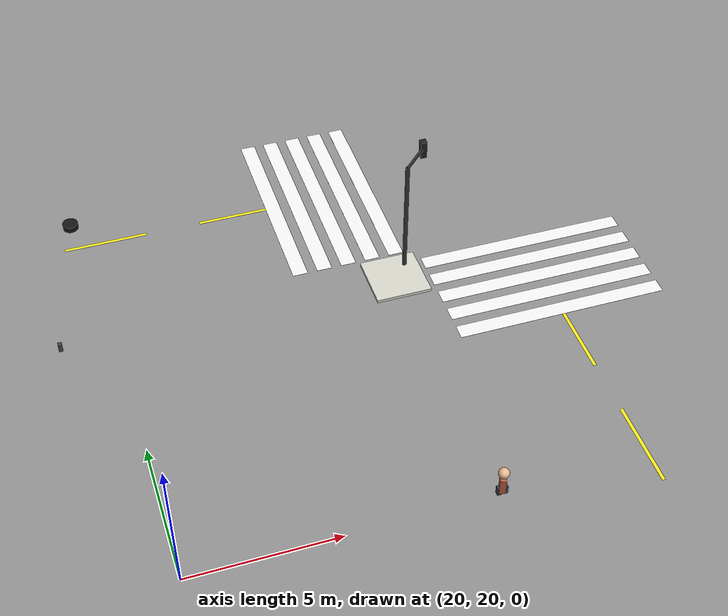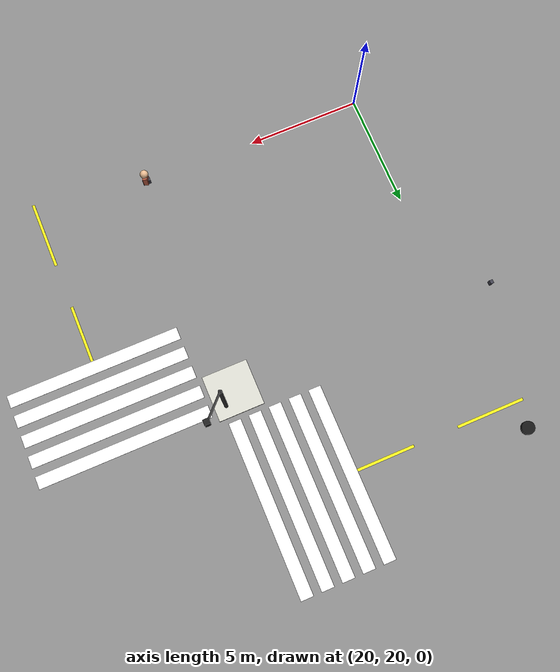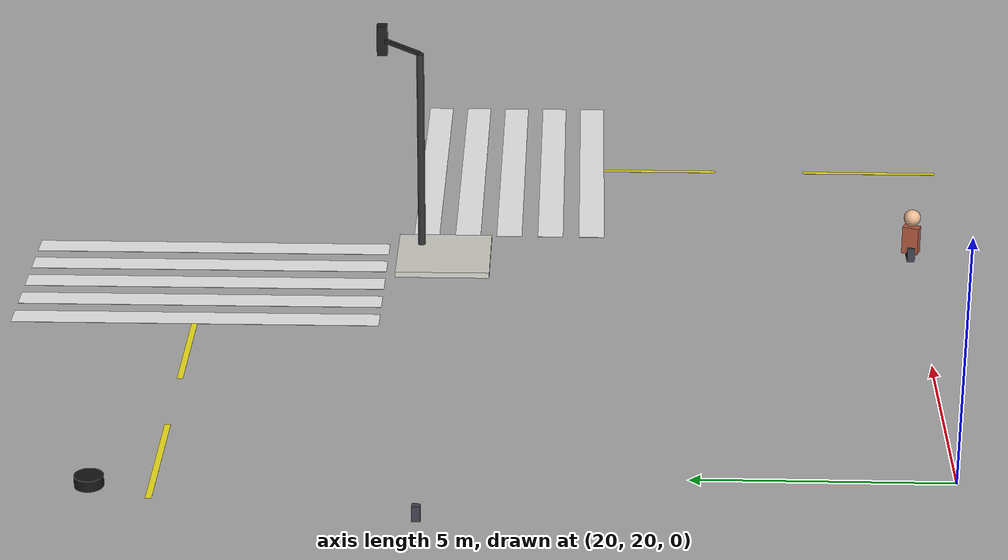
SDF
<sdf version="1.9">
 <world name="city">
  <model name="sw_corner_88">
   <static>true</static>
   <pose>30.0 30.0 0.065 0 0 0</pose>
   <link name="l">
    <collision name="c"><geometry><box><size>2.0 2.0 0.12</size></box></geometry></collision>
    <visual name="v">
     <geometry><box><size>2.0 2.0 0.12</size></box></geometry>
     <material>
      <ambient>0.82 0.82 0.78 1</ambient>
      <diffuse>0.82 0.82 0.78 1</diffuse>
      <specular>0.04 0.04 0.04 1</specular>
     </material>
    </visual>
   </link>
  </model>
  <model name="cw_s_252">
   <static>true</static>
   <pose>35.0 30.425 0.013000000000000001 0 0 0</pose>
   <link name="l">
    <visual name="v">
     <geometry><box><size>7.6 0.55 0.005</size></box></geometry>
     <material>
      <ambient>0.94 0.94 0.94 1</ambient>
      <diffuse>0.94 0.94 0.94 1</diffuse>
      <specular>0.04 0.04 0.04 1</specular>
     </material>
    </visual>
   </link>
  </model>
  <model name="cw_w_254">
   <static>true</static>
   <pose>30.425 35.0 0.013000000000000001 0 0 0</pose>
   <link name="l">
    <visual name="v">
     <geometry><box><size>0.55 7.6 0.005</size></box></geometry>
     <material>
      <ambient>0.94 0.94 0.94 1</ambient>
      <diffuse>0.94 0.94 0.94 1</diffuse>
      <specular>0.04 0.04 0.04 1</specular>
     </material>
    </visual>
   </link>
  </model>
  <model name="cw_s_256">
   <static>true</static>
   <pose>35.0 29.525 0.013000000000000001 0 0 0</pose>
   <link name="l">
    <visual name="v">
     <geometry><box><size>7.6 0.55 0.005</size></box></geometry>
     <material>
      <ambient>0.94 0.94 0.94 1</ambient>
      <diffuse>0.94 0.94 0.94 1</diffuse>
      <specular>0.04 0.04 0.04 1</specular>
     </material>
    </visual>
   </link>
  </model>
  <model name="cw_w_258">
   <static>true</static>
   <pose>29.525 35.0 0.013000000000000001 0 0 0</pose>
   <link name="l">
    <visual name="v">
     <geometry><box><size>0.55 7.6 0.005</size></box></geometry>
     <material>
      <ambient>0.94 0.94 0.94 1</ambient>
      <diffuse>0.94 0.94 0.94 1</diffuse>
      <specular>0.04 0.04 0.04 1</specular>
     </material>
    </visual>
   </link>
  </model>
  <model name="cw_s_260">
   <static>true</static>
   <pose>35.0 28.625 0.013000000000000001 0 0 0</pose>
   <link name="l">
    <visual name="v">
     <geometry><box><size>7.6 0.55 0.005</size></box></geometry>
     <material>
      <ambient>0.94 0.94 0.94 1</ambient>
      <diffuse>0.94 0.94 0.94 1</diffuse>
      <specular>0.04 0.04 0.04 1</specular>
     </material>
    </visual>
   </link>
  </model>
  <model name="cw_w_262">
   <static>true</static>
   <pose>28.625 35.0 0.013000000000000001 0 0 0</pose>
   <link name="l">
    <visual name="v">
     <geometry><box><size>0.55 7.6 0.005</size></box></geometry>
     <material>
      <ambient>0.94 0.94 0.94 1</ambient>
      <diffuse>0.94 0.94 0.94 1</diffuse>
      <specular>0.04 0.04 0.04 1</specular>
     </material>
    </visual>
   </link>
  </model>
  <model name="cw_s_264">
   <static>true</static>
   <pose>35.0 27.725 0.013000000000000001 0 0 0</pose>
   <link name="l">
    <visual name="v">
     <geometry><box><size>7.6 0.55 0.005</size></box></geometry>
     <material>
      <ambient>0.94 0.94 0.94 1</ambient>
      <diffuse>0.94 0.94 0.94 1</diffuse>
      <specular>0.04 0.04 0.04 1</specular>
     </material>
    </visual>
   </link>
  </model>
  <model name="cw_w_266">
   <static>true</static>
   <pose>27.725 35.0 0.013000000000000001 0 0 0</pose>
   <link name="l">
    <visual name="v">
     <geometry><box><size>0.55 7.6 0.005</size></box></geometry>
     <material>
      <ambient>0.94 0.94 0.94 1</ambient>
      <diffuse>0.94 0.94 0.94 1</diffuse>
      <specular>0.04 0.04 0.04 1</specular>
     </material>
    </visual>
   </link>
  </model>
  <model name="cw_s_268">
   <static>true</static>
   <pose>35.0 26.825 0.013000000000000001 0 0 0</pose>
   <link name="l">
    <visual name="v">
     <geometry><box><size>7.6 0.55 0.005</size></box></geometry>
     <material>
      <ambient>0.94 0.94 0.94 1</ambient>
      <diffuse>0.94 0.94 0.94 1</diffuse>
      <specular>0.04 0.04 0.04 1</specular>
     </material>
    </visual>
   </link>
  </model>
  <model name="cw_w_270">
   <static>true</static>
   <pose>26.825 35.0 0.013000000000000001 0 0 0</pose>
   <link name="l">
    <visual name="v">
     <geometry><box><size>0.55 7.6 0.005</size></box></geometry>
     <material>
      <ambient>0.94 0.94 0.94 1</ambient>
      <diffuse>0.94 0.94 0.94 1</diffuse>
      <specular>0.04 0.04 0.04 1</specular>
     </material>
    </visual>
   </link>
  </model>
  <model name="dash_330">
   <static>true</static>
   <pose>35.0 20.5 0.012 0 0 0</pose>
   <link name="l">
    <visual name="v">
     <geometry><box><size>0.12 3.0 0.003</size></box></geometry>
     <material>
      <ambient>0.95 0.9 0.1 1</ambient>
      <diffuse>0.95 0.9 0.1 1</diffuse>
      <specular>0.04 0.04 0.04 1</specular>
     </material>
    </visual>
   </link>
  </model>
  <model name="dash_331">
   <static>true</static>
   <pose>35.0 25.5 0.012 0 0 0</pose>
   <link name="l">
    <visual name="v">
     <geometry><box><size>0.12 3.0 0.003</size></box></geometry>
     <material>
      <ambient>0.95 0.9 0.1 1</ambient>
      <diffuse>0.95 0.9 0.1 1</diffuse>
      <specular>0.04 0.04 0.04 1</specular>
     </material>
    </visual>
   </link>
  </model>
  <model name="dash_396">
   <static>true</static>
   <pose>20.5 35.0 0.012 0 0 0</pose>
   <link name="l">
    <visual name="v">
     <geometry><box><size>3.0 0.12 0.003</size></box></geometry>
     <material>
      <ambient>0.95 0.9 0.1 1</ambient>
      <diffuse>0.95 0.9 0.1 1</diffuse>
      <specular>0.04 0.04 0.04 1</specular>
     </material>
    </visual>
   </link>
  </model>
  <model name="dash_397">
   <static>true</static>
   <pose>25.5 35.0 0.012 0 0 0</pose>
   <link name="l">
    <visual name="v">
     <geometry><box><size>3.0 0.12 0.003</size></box></geometry>
     <material>
      <ambient>0.95 0.9 0.1 1</ambient>
      <diffuse>0.95 0.9 0.1 1</diffuse>
      <specular>0.04 0.04 0.04 1</specular>
     </material>
    </visual>
   </link>
  </model>
  <model name="rcar7_w_557">
   <static>true</static>
   <pose>19.399996877766217 36.149994857518585 0.158 0 0 0.0</pose>
   <link name="l">
    <visual name="v">
     <geometry><cylinder><radius>0.28</radius><length>0.22</length></cylinder></geometry>
     <material><ambient>0.08 0.08 0.08 1</ambient><diffuse>0.08 0.08 0.08 1</diffuse></material>
    </visual>
   </link>
  </model>
  <model name="ped13_t_622">
   <static>true</static>
   <pose>30.0 20 0.575 0 0 4.340000000000002</pose>
   <link name="l">
    <collision name="c"><geometry><box><size>0.35 0.2 0.6</size></box></geometry></collision>
    <visual name="v">
     <geometry><box><size>0.35 0.2 0.6</size></box></geometry>
     <material>
      <ambient>0.7 0.35 0.25 1</ambient>
      <diffuse>0.7 0.35 0.25 1</diffuse>
      <specular>0.04 0.04 0.04 1</specular>
     </material>
    </visual>
   </link>
  </model>
  <model name="ped13_h_623">
   <static>true</static>
   <pose>30.0 20 1.075 0 0 0</pose>
   <link name="l">
    <visual name="v">
     <geometry><sphere><radius>0.18</radius></sphere></geometry>
     <material><ambient>0.9 0.72 0.56 1</ambient><diffuse>0.9 0.72 0.56 1</diffuse></material>
    </visual>
   </link>
  </model>
  <model name="ped13_l-0.1_624">
   <static>true</static>
   <pose>29.9 20 0.275 0 0 0</pose>
   <link name="l">
    <collision name="c"><geometry><box><size>0.14 0.16 0.3</size></box></geometry></collision>
    <visual name="v">
     <geometry><box><size>0.14 0.16 0.3</size></box></geometry>
     <material>
      <ambient>0.25 0.25 0.3 1</ambient>
      <diffuse>0.25 0.25 0.3 1</diffuse>
      <specular>0.04 0.04 0.04 1</specular>
     </material>
    </visual>
   </link>
  </model>
  <model name="ped13_l0.1_625">
   <static>true</static>
   <pose>30.1 20 0.275 0 0 0</pose>
   <link name="l">
    <collision name="c"><geometry><box><size>0.14 0.16 0.3</size></box></geometry></collision>
    <visual name="v">
     <geometry><box><size>0.14 0.16 0.3</size></box></geometry>
     <material>
      <ambient>0.25 0.25 0.3 1</ambient>
      <diffuse>0.25 0.25 0.3 1</diffuse>
      <specular>0.04 0.04 0.04 1</specular>
     </material>
    </visual>
   </link>
  </model>
  <model name="ped26_l0.1_677">
   <static>true</static>
   <pose>18.1 30.0 0.275 0 0 0</pose>
   <link name="l">
    <collision name="c"><geometry><box><size>0.14 0.16 0.3</size></box></geometry></collision>
    <visual name="v">
     <geometry><box><size>0.14 0.16 0.3</size></box></geometry>
     <material>
      <ambient>0.25 0.25 0.3 1</ambient>
      <diffuse>0.25 0.25 0.3 1</diffuse>
      <specular>0.04 0.04 0.04 1</specular>
     </material>
    </visual>
   </link>
  </model>
  <model name="tl_35_35_0_pole_882">
   <static>true</static>
   <pose>30.5 30.5 2.255 0 0 0</pose>
   <link name="l">
    <collision name="c">
     <geometry><cylinder><radius>0.08</radius><length>4.5</length></cylinder></geometry>
    </collision>
    <visual name="v">
     <geometry><cylinder><radius>0.08</radius><length>4.5</length></cylinder></geometry>
     <material><ambient>0.2 0.2 0.2 1</ambient><diffuse>0.2 0.2 0.2 1</diffuse></material>
    </visual>
   </link>
  </model>
  <model name="tl_35_35_0_arm_883">
   <static>true</static>
   <pose>30.92443296150032 30.92409510866322 4.505 0 0 0.785</pose>
   <link name="l">
    <collision name="c"><geometry><box><size>1.2 0.08 0.08</size></box></geometry></collision>
    <visual name="v">
     <geometry><box><size>1.2 0.08 0.08</size></box></geometry>
     <material>
      <ambient>0.2 0.2 0.2 1</ambient>
      <diffuse>0.2 0.2 0.2 1</diffuse>
      <specular>0.04 0.04 0.04 1</specular>
     </material>
    </visual>
   </link>
  </model>
  <model name="tl_35_35_0_hous_884">
   <static>true</static>
   <pose>31.34886592300064 31.34819021732644 4.505 0 0 0</pose>
   <link name="l">
    <collision name="c"><geometry><box><size>0.22 0.22 0.65</size></box></geometry></collision>
    <visual name="v">
     <geometry><box><size>0.22 0.22 0.65</size></box></geometry>
     <material>
      <ambient>0.12 0.12 0.12 1</ambient>
      <diffuse>0.12 0.12 0.12 1</diffuse>
      <specular>0.04 0.04 0.04 1</specular>
     </material>
    </visual>
   </link>
  </model>
  <model name="tl_35_35_0_l0_885">
   <static>true</static>
   <pose>31.34886592300064 31.34819021732644 4.705 0 0 0</pose>
   <link name="l">
    <visual name="v">
     <geometry><sphere><radius>0.07</radius></sphere></geometry>
     <material><ambient>0.95 0.08 0.08 1</ambient><diffuse>0.95 0.08 0.08 1</diffuse></material>
    </visual>
   </link>
  </model>
  <model name="tl_35_35_0_l1_886">
   <static>true</static>
   <pose>31.34886592300064 31.34819021732644 4.505 0 0 0</pose>
   <link name="l">
    <visual name="v">
     <geometry><sphere><radius>0.07</radius></sphere></geometry>
     <material><ambient>0.9 0.8 0.05 1</ambient><diffuse>0.9 0.8 0.05 1</diffuse></material>
    </visual>
   </link>
  </model>
  <model name="tl_35_35_0_l2_887">
   <static>true</static>
   <pose>31.34886592300064 31.34819021732644 4.305 0 0 0</pose>
   <link name="l">
    <visual name="v">
     <geometry><sphere><radius>0.07</radius></sphere></geometry>
     <material><ambient>0.05 0.85 0.15 1</ambient><diffuse>0.05 0.85 0.15 1</diffuse></material>
    </visual>
   </link>
  </model>
 </world>
</sdf>
